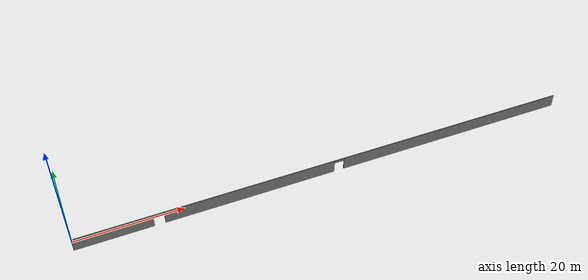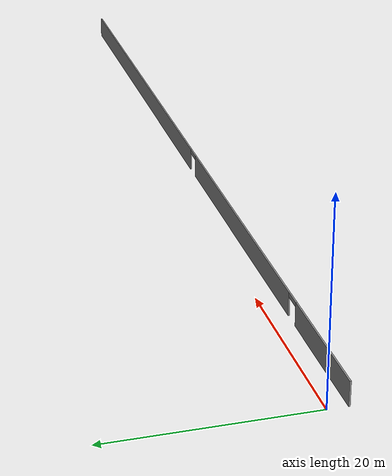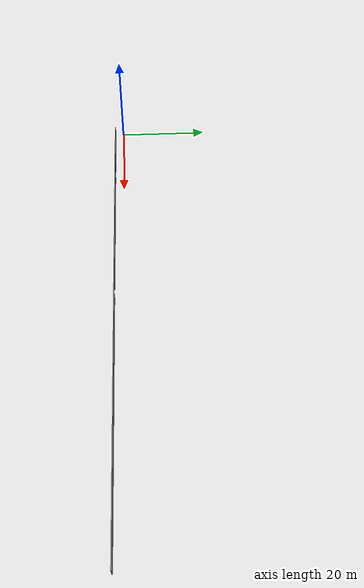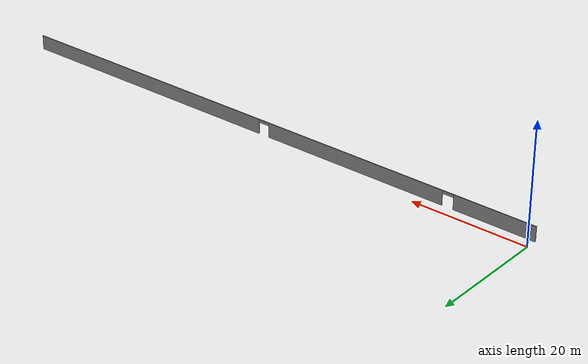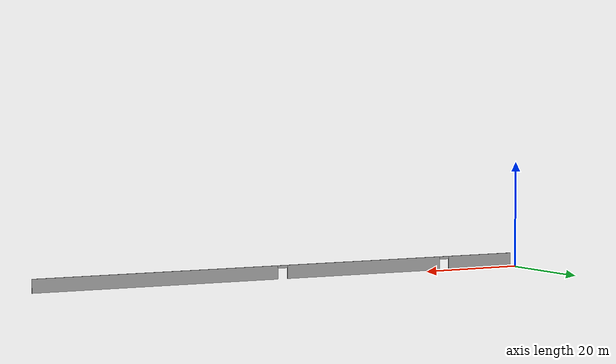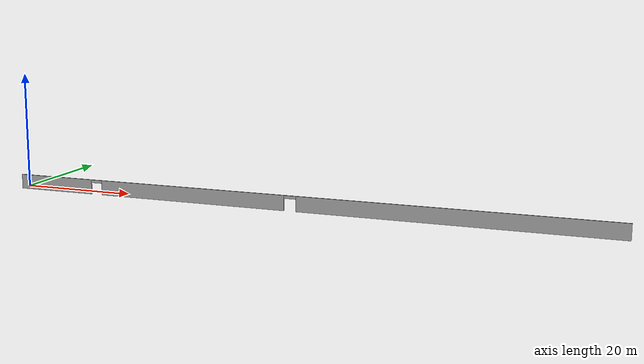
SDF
<?xml version='1.0'?>
<sdf version='1.6'>
  <model name='wall_two_doors'>
    <pose frame=''>50 -2 0 0 -0 0</pose>
    <link name='Wall_0'>
      <pose frame=''>2e-06 0 0 0 -0 0</pose>
      <visual name='Wall_0_Visual_0'>
        <pose frame=''>-43.0375 0 1.25 0 -0 0</pose>
        <geometry>
          <box>
            <size>14.075 0.15 2.5</size>
          </box>
        </geometry>
        <material>
          <script>
            <uri>file://media/materials/scripts/gazebo.material</uri>
            <name>Gazebo/Grey</name>
          </script>
          <ambient>1 1 1 1</ambient>
        </material>
        <meta>
          <layer>0</layer>
        </meta>
      </visual>
      <collision name='Wall_0_Collision_0'>
        <geometry>
          <box>
            <size>14.075 0.15 2.5</size>
          </box>
        </geometry>
        <pose frame=''>-43.0375 0 1.25 0 -0 0</pose>
      </collision>
      <visual name='Wall_0_Visual_1'>
        <pose frame=''>-17.5 0 1.25 0 -0 0</pose>
        <geometry>
          <box>
            <size>33 0.15 2.5</size>
          </box>
        </geometry>
        <material>
          <script>
            <uri>file://media/materials/scripts/gazebo.material</uri>
            <name>Gazebo/Grey</name>
          </script>
          <ambient>1 1 1 1</ambient>
        </material>
        <meta>
          <layer>0</layer>
        </meta>
      </visual>
      <collision name='Wall_0_Collision_1'>
        <geometry>
          <box>
            <size>33 0.15 2.5</size>
          </box>
        </geometry>
        <pose frame=''>-17.5 0 1.25 0 -0 0</pose>
      </collision>
      <visual name='Wall_0_Visual_2'>
        <pose frame=''>25.5375 0 1.25 0 -0 0</pose>
        <geometry>
          <box>
            <size>49.075 0.15 2.5</size>
          </box>
        </geometry>
        <material>
          <script>
            <uri>file://media/materials/scripts/gazebo.material</uri>
            <name>Gazebo/Grey</name>
          </script>
          <ambient>1 1 1 1</ambient>
        </material>
        <meta>
          <layer>0</layer>
        </meta>
      </visual>
      <collision name='Wall_0_Collision_2'>
        <geometry>
          <box>
            <size>49.075 0.15 2.5</size>
          </box>
        </geometry>
        <pose frame=''>25.5375 0 1.25 0 -0 0</pose>
      </collision>
      <visual name='Wall_0_Visual_3'>
        <pose frame=''>-35 0 2.25 0 -0 0</pose>
        <geometry>
          <box>
            <size>2 0.15 0.5</size>
          </box>
        </geometry>
        <material>
          <script>
            <uri>file://media/materials/scripts/gazebo.material</uri>
            <name>Gazebo/Grey</name>
          </script>
          <ambient>1 1 1 1</ambient>
        </material>
        <meta>
          <layer>0</layer>
        </meta>
      </visual>
      <collision name='Wall_0_Collision_3'>
        <geometry>
          <box>
            <size>2 0.15 0.5</size>
          </box>
        </geometry>
        <pose frame=''>-35 0 2.25 0 -0 0</pose>
      </collision>
      <visual name='Wall_0_Visual_4'>
        <pose frame=''>0 0 2.25 0 -0 0</pose>
        <geometry>
          <box>
            <size>2 0.15 0.5</size>
          </box>
        </geometry>
        <material>
          <script>
            <uri>file://media/materials/scripts/gazebo.material</uri>
            <name>Gazebo/Grey</name>
          </script>
          <ambient>1 1 1 1</ambient>
        </material>
        <meta>
          <layer>0</layer>
        </meta>
      </visual>
      <collision name='Wall_0_Collision_4'>
        <geometry>
          <box>
            <size>2 0.15 0.5</size>
          </box>
        </geometry>
        <pose frame=''>0 0 2.25 0 -0 0</pose>
      </collision>
    </link>
    <static>1</static>
  </model>
</sdf>
